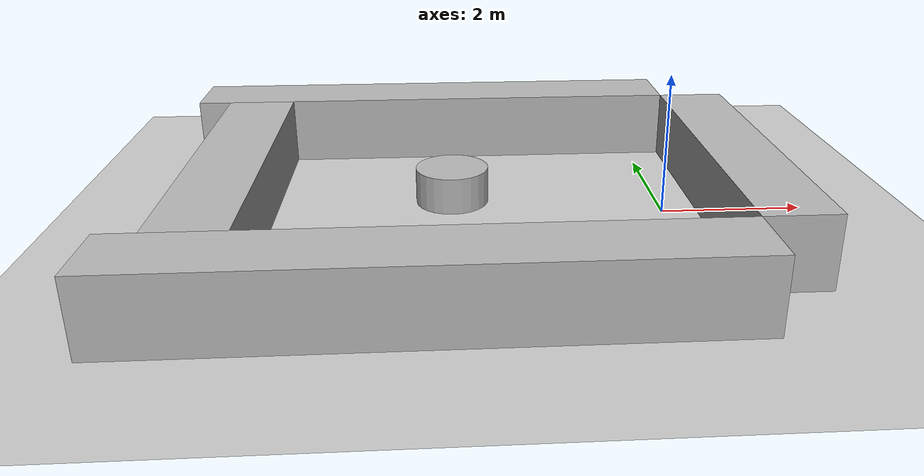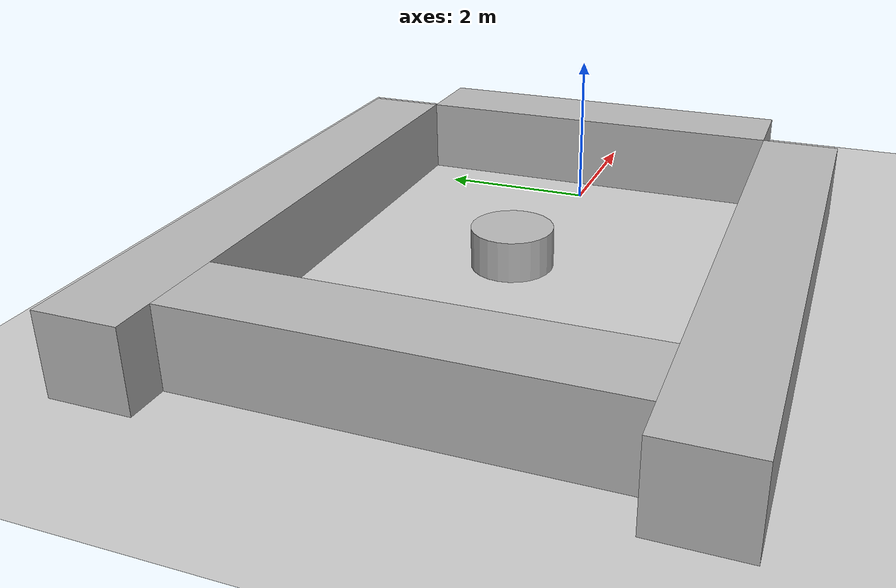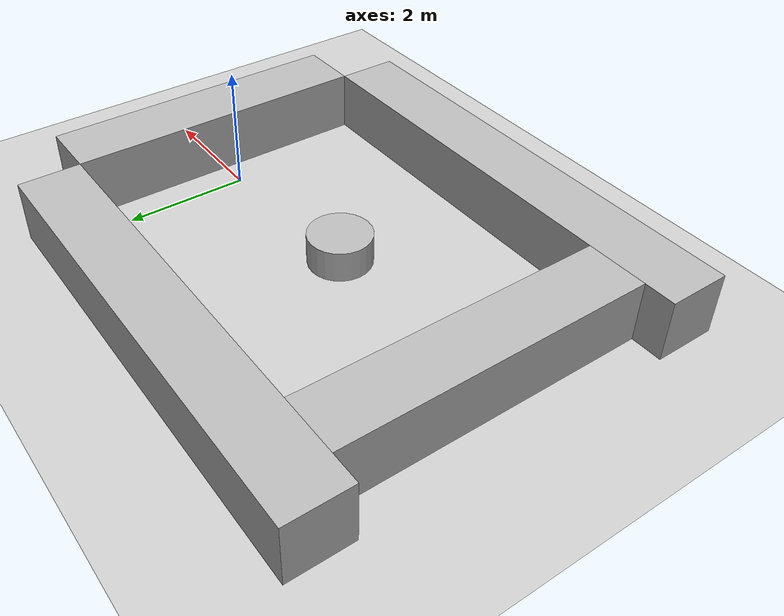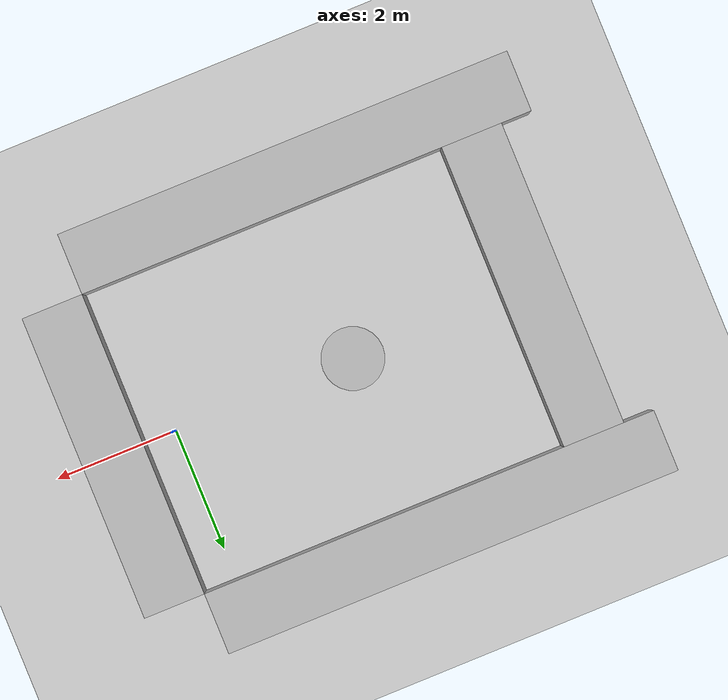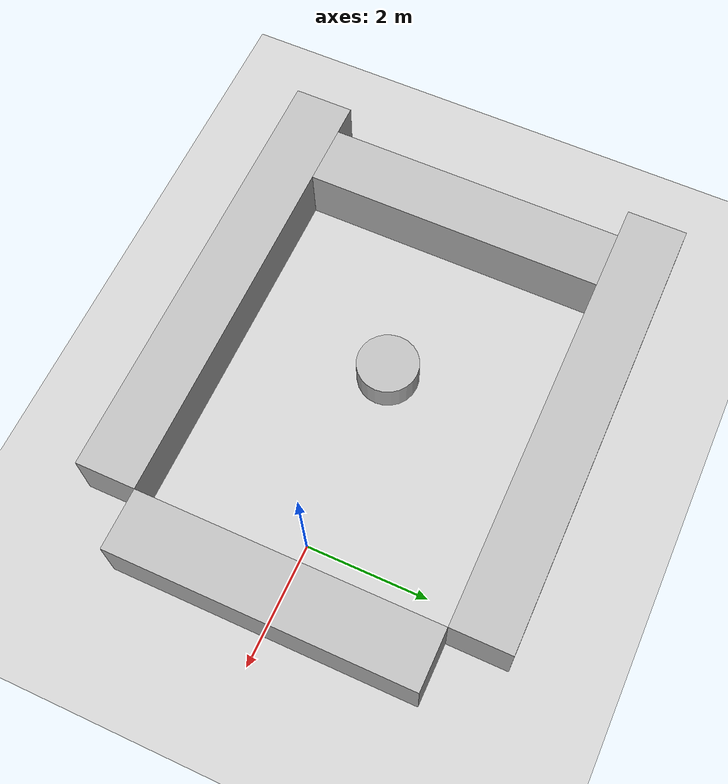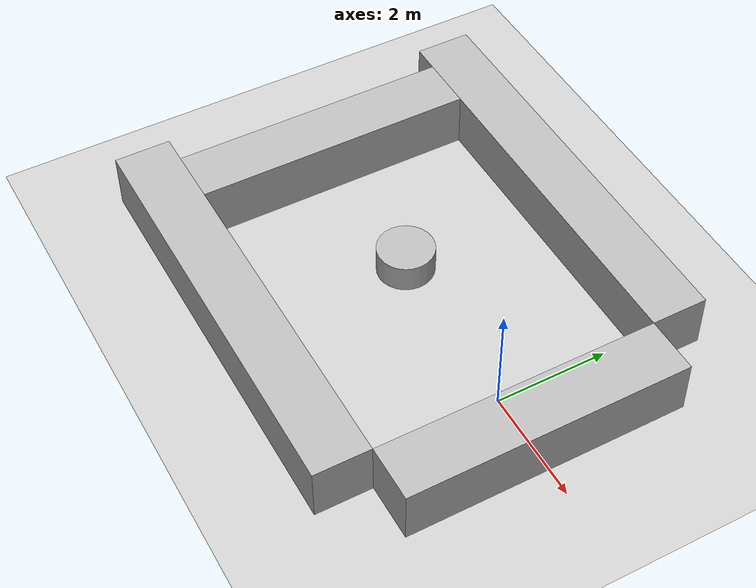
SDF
<!-- Based on empty.world from  https://github.com/turtlebot/turtlebot_simulator/blob/melodic/turtlebot_gazebo/worlds/empty.world-->

<?xml version="1.0" ?>
<sdf version="1.4">
  <world name="default">

    <!-- A global light source -->
    <include>
      <uri>model://sun</uri>
    </include>

    <!-- A ground plane -->
    <include>
      <uri>model://ground_plane</uri>
    </include>

    <model name="table">
    <pose>-3 0 0.5 0 0 0</pose>
    <static>true</static>
    <link name="link">
      <inertial>
        <mass>1.0</mass>
        <inertia> <!-- inertias are tricky to compute -->
          <!-- http://gazebosim.org/tutorials?tut=inertia&cat=build_robot -->
          <ixx>0.083</ixx>       <!-- for a box: ixx = 0.083 * mass * (y*y + z*z) -->
          <ixy>0.0</ixy>         <!-- for a box: ixy = 0 -->
          <ixz>0.0</ixz>         <!-- for a box: ixz = 0 -->
          <iyy>0.083</iyy>       <!-- for a box: iyy = 0.083 * mass * (x*x + z*z) -->
          <iyz>0.0</iyz>         <!-- for a box: iyz = 0 -->
          <izz>0.083</izz>       <!-- for a box: izz = 0.083 * mass * (x*x + y*y) -->
        </inertia>
      </inertial>
      <collision name="collision">
        <geometry>
          <cylinder>
            <radius>0.5</radius>
            <length>0.5</length>
          </cylinder>
        </geometry>
      </collision>
      <visual name="visual">
        <geometry>
        <cylinder>
            <radius>0.5</radius>
            <length>0.5</length>
        </cylinder>
        </geometry>
      </visual>
    </link>
  </model>

    <model name="south_wall">
    <pose>-3.25 -3 0.5 0 0 0</pose>
    <static>true</static>
    <link name="link">
      <inertial>
        <mass>1.0</mass>
        <inertia> <!-- inertias are tricky to compute -->
          <!-- http://gazebosim.org/tutorials?tut=inertia&cat=build_robot -->
          <ixx>0.083</ixx>       <!-- for a box: ixx = 0.083 * mass * (y*y + z*z) -->
          <ixy>0.0</ixy>         <!-- for a box: ixy = 0 -->
          <ixz>0.0</ixz>         <!-- for a box: ixz = 0 -->
          <iyy>0.083</iyy>       <!-- for a box: iyy = 0.083 * mass * (x*x + z*z) -->
          <iyz>0.0</iyz>         <!-- for a box: iyz = 0 -->
          <izz>0.083</izz>       <!-- for a box: izz = 0.083 * mass * (x*x + y*y) -->
        </inertia>
      </inertial>
      <collision name="collision">
        <geometry>
          <box>
            <size>7.5 1 1</size>
          </box>
        </geometry>
      </collision>
      <visual name="visual">
        <geometry>
          <box>
            <size>7.5 1 1</size>
          </box>
        </geometry>
      </visual>
    </link>
  </model>

  <model name="north_wall">
    <pose>-3.25 3 0.5 0 0 0</pose>
    <static>true</static>
    <link name="link">
      <inertial>
        <mass>1.0</mass>
        <inertia> <!-- inertias are tricky to compute -->
          <!-- http://gazebosim.org/tutorials?tut=inertia&cat=build_robot -->
          <ixx>0.083</ixx>       <!-- for a box: ixx = 0.083 * mass * (y*y + z*z) -->
          <ixy>0.0</ixy>         <!-- for a box: ixy = 0 -->
          <ixz>0.0</ixz>         <!-- for a box: ixz = 0 -->
          <iyy>0.083</iyy>       <!-- for a box: iyy = 0.083 * mass * (x*x + z*z) -->
          <iyz>0.0</iyz>         <!-- for a box: iyz = 0 -->
          <izz>0.083</izz>       <!-- for a box: izz = 0.083 * mass * (x*x + y*y) -->
        </inertia>
      </inertial>
      <collision name="collision">
        <geometry>
          <box>
            <size>7.5 1 1</size>
          </box>
        </geometry>
      </collision>
      <visual name="visual">
        <geometry>
          <box>
            <size>7.5 1 1</size>
          </box>
        </geometry>
      </visual>
    </link>
  </model>

  <model name="east_wall">
    <pose>1 0 0.5 0 0 0</pose>
    <static>true</static>
    <link name="link">
      <inertial>
        <mass>1.0</mass>
        <inertia> <!-- inertias are tricky to compute -->
          <!-- http://gazebosim.org/tutorials?tut=inertia&cat=build_robot -->
          <ixx>0.083</ixx>       <!-- for a box: ixx = 0.083 * mass * (y*y + z*z) -->
          <ixy>0.0</ixy>         <!-- for a box: ixy = 0 -->
          <ixz>0.0</ixz>         <!-- for a box: ixz = 0 -->
          <iyy>0.083</iyy>       <!-- for a box: iyy = 0.083 * mass * (x*x + z*z) -->
          <iyz>0.0</iyz>         <!-- for a box: iyz = 0 -->
          <izz>0.083</izz>       <!-- for a box: izz = 0.083 * mass * (x*x + y*y) -->
        </inertia>
      </inertial>
      <collision name="collision">
        <geometry>
          <box>
            <size>1 5 1</size>
          </box>
        </geometry>
      </collision>
      <visual name="visual">
        <geometry>
          <box>
            <size>1 5 1</size>
          </box>
        </geometry>
      </visual>
    </link>
  </model>

  <model name="west_wall">
    <pose>-6 0 0.5 0 0 0</pose>
    <static>true</static>
    <link name="link">
      <inertial>
        <mass>1.0</mass>
        <inertia> <!-- inertias are tricky to compute -->
          <!-- http://gazebosim.org/tutorials?tut=inertia&cat=build_robot -->
          <ixx>0.083</ixx>       <!-- for a box: ixx = 0.083 * mass * (y*y + z*z) -->
          <ixy>0.0</ixy>         <!-- for a box: ixy = 0 -->
          <ixz>0.0</ixz>         <!-- for a box: ixz = 0 -->
          <iyy>0.083</iyy>       <!-- for a box: iyy = 0.083 * mass * (x*x + z*z) -->
          <iyz>0.0</iyz>         <!-- for a box: iyz = 0 -->
          <izz>0.083</izz>       <!-- for a box: izz = 0.083 * mass * (x*x + y*y) -->
        </inertia>
      </inertial>
      <collision name="collision">
        <geometry>
          <box>
            <size>1 5 1</size>
          </box>
        </geometry>
      </collision>
      <visual name="visual">
        <geometry>
          <box>
            <size>1 5 1</size>
          </box>
        </geometry>
      </visual>
    </link>
  </model>

    <!-- Own physics settings to speed up simulation -->
    <physics type='ode'>
      <max_step_size>0.01</max_step_size>
      <real_time_factor>1</real_time_factor>
      <real_time_update_rate>100</real_time_update_rate>
      <gravity>0 0 -9.8</gravity>
    </physics>
  </world>
</sdf>
